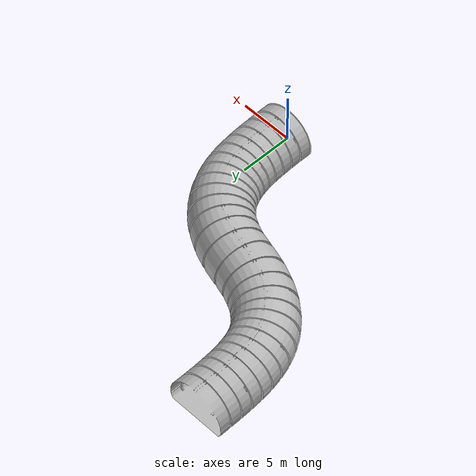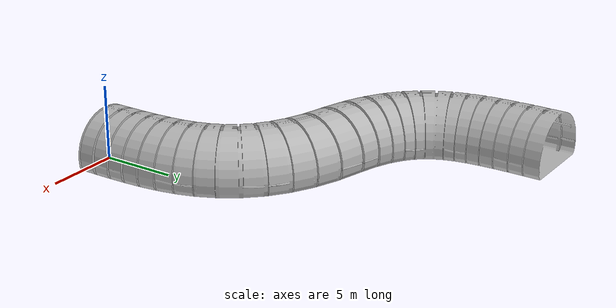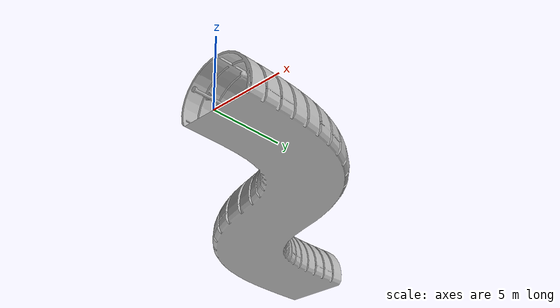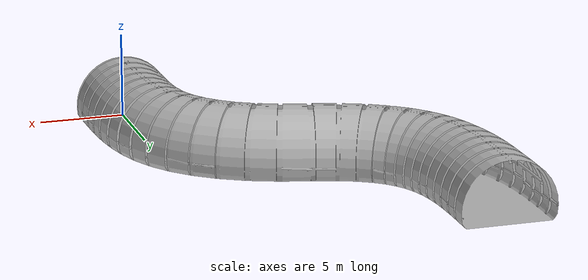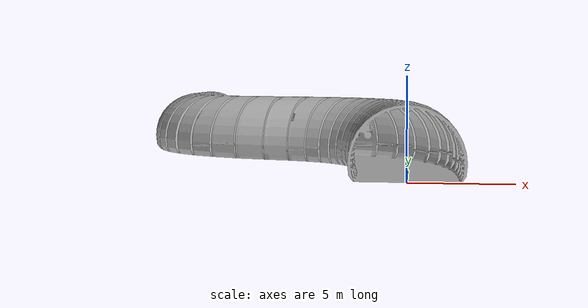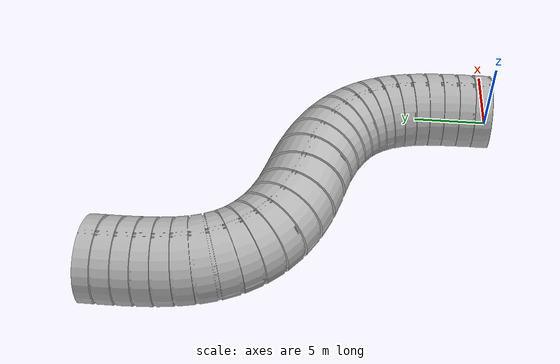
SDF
<?xml version="1.0" ?>
<sdf version="1.6">
  <model name="tunnel_bend_left">
    <static>true</static>
    <link name="link">
      <collision name="collision">
        <geometry>
          <mesh>
            <scale>0.01 0.01 0.01</scale>
            <uri>model://tunnel_bend_left/meshes/Tunnel_Bend_S_Left.obj</uri>
          </mesh>
        </geometry>
      </collision>
      <visual name="visual">
        <geometry>
          <mesh>
            <scale>0.01 0.01 0.01</scale>
            <uri>model://tunnel_bend_left/meshes/Tunnel_Bend_S_Left.obj</uri>
          </mesh>
        </geometry>
      </visual>
    </link>
  </model>
</sdf>
